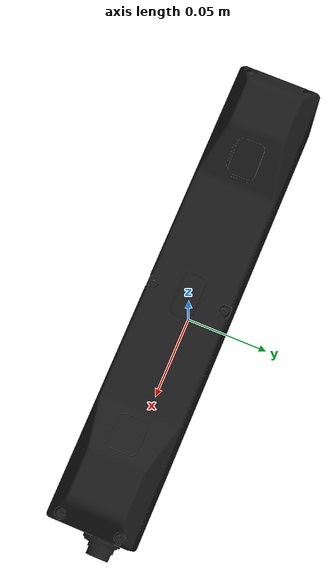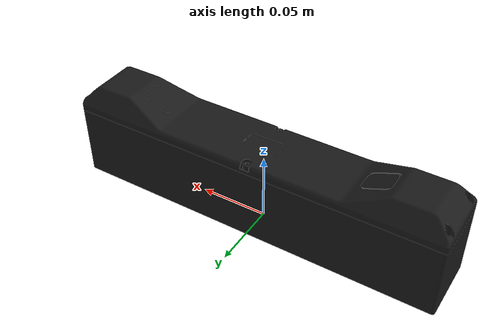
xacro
<?xml version="1.0"?>
<robot xmlns:xacro="http://www.ros.org/wiki/xacro"
       name="gocator">

    <!-- Set properties -->
    <xacro:property name="parent" value="world" />
    <xacro:property name="name" value="gocator" />

    <!-- include the gocator camera -->
    <xacro:include filename="$(find gocator_3100)/urdf/gocator_3110.urdf.xacro" />

    <!-- Set origin link -->
    <link name="${parent}" />

    <!-- call the macro for one camera -->
    <xacro:gocator_3110 parent="${parent}" name="${name}">
        <origin xyz="0 0 0" rpy="0 0 0" />
    </xacro:gocator_3110>

</robot>

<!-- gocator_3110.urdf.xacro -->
<robot xmlns:xacro="http://www.ros.org/wiki/xacro">

    <material name="Gocator/Black">
        <color rgba="0.1 0.1 0.1 1.0"/>
    </material>

    <!-- Just the bounding box of the gocator -->
    <xacro:macro name="gocator_3110" params="parent name">
        <joint name="${parent}_${name}_anchor" type="fixed">
            <parent link="${parent}" />
            <child link="${name}" />
        </joint>

        <link name="${name}">
            <visual>
                <origin xyz="0 0 0.0623" rpy="3.141592 0 0"/>
                <geometry>
                    <mesh filename="package://gocator_3100/urdf/gocator_3110.stl" scale="0.001 0.001 0.001"/>
                </geometry>
                <material name="Gocator/Black"/>
            </visual>
            <collision>
                <origin xyz="0 0 0.04" rpy="0 0 0"/>
                <geometry>
                    <box size="0.300 0.04 0.08"/>
                </geometry>
            </collision>
        </link>

        <joint name="${name}_point_cloud_anchor" type="fixed" >
            <parent link="${name}"/>
            <child link="${name}_point_cloud"/>
            <origin xyz="0 0 ${0.0623+0.150+0.05}" rpy="0 3.141592 -1.570796"/>  <!--27.9cm from parent -->
        </joint>

        <link name="${name}_point_cloud"/>

        <gazebo reference="${name}">
            <static>true</static>
        </gazebo>
    </xacro:macro>

</robot>
